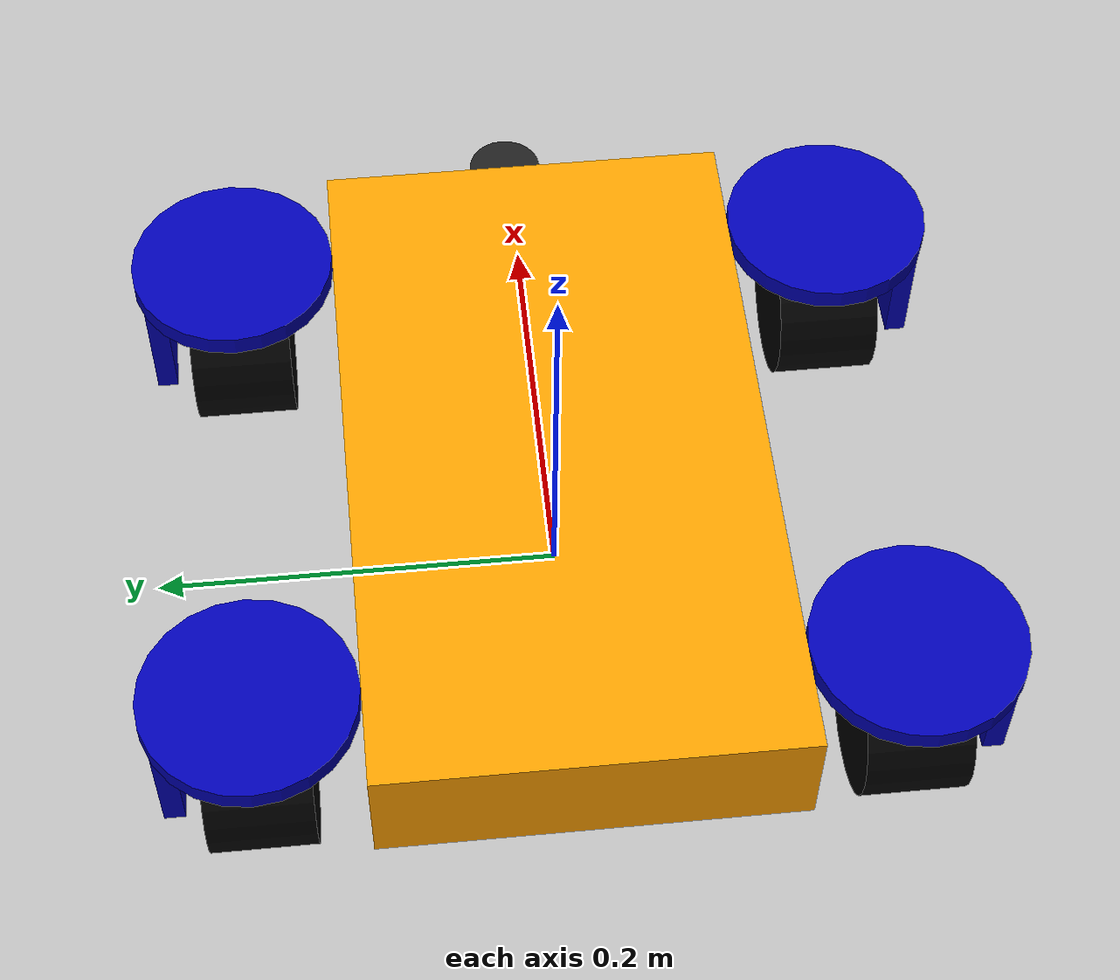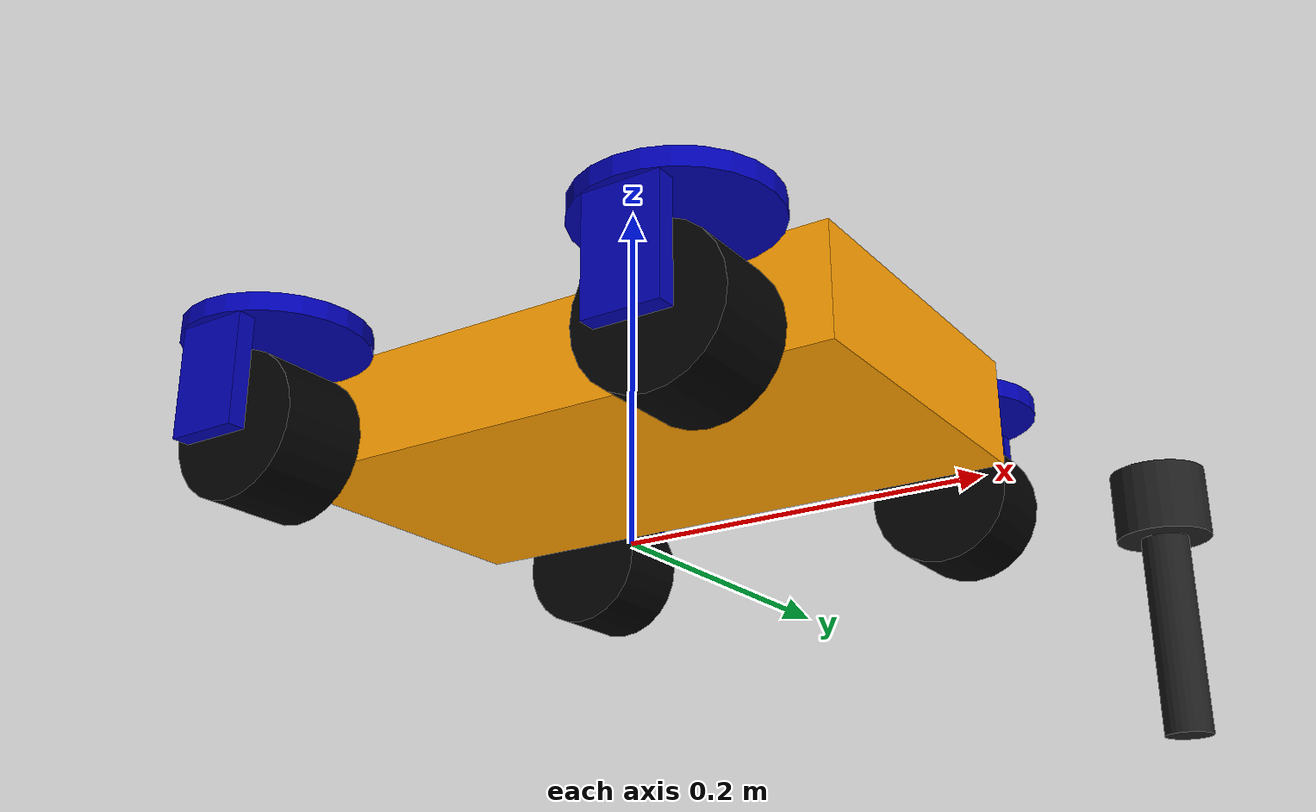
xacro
<?xml version="1.0" ?>
<robot name="zinger" xmlns:xacro="http://www.ros.org/wiki/xacro">

    <!-- CONSTANTS -->
    <!-- Math -->
    <xacro:property name="PI" value="3.1415926535897931"/>

    <!-- ARGUMENTS -->
    <xacro:arg name="is_simulation" default="true" />
    <xacro:arg name="use_fake_hardware" default="true" />
    <xacro:arg name="fake_sensor_commands" default="false" />
    <xacro:arg name="chassis_version" default="v1" />

    <!-- Chassis dimensions -->
    <xacro:property name="chassis_mass" value="1.0" /> <!-- arbitrary value for base mass -->
    <xacro:property name="chassis_length" value="0.35" />
    <xacro:property name="chassis_width" value="0.2" />
    <xacro:property name="chassis_height" value="0.06" />

    <!-- Suspension dimensions -->
    <xacro:property name="wheel_offset" value="0.01" />
    <xacro:property name="steering_mass" value="0.2" />
    <xacro:property name="steering_radius" value="0.05" />
    <xacro:property name="steering_thickness" value="0.01" />

    <!-- Wheel dimensions -->
    <xacro:property name="wheel_mass" value="0.2" />
    <xacro:property name="wheel_radius" value="0.04" />
    <xacro:property name="wheel_width" value="0.05" />

    <xacro:property name="front_x_reflect" value="1" />
    <xacro:property name="rear_x_reflect" value="-1" />

    <xacro:property name="left_y_reflect" value="1" />
    <xacro:property name="right_y_reflect" value="-1" />

    <!-- INCLUDES -->

    <xacro:include filename="$(find agv_pkg)/urdf/materials.xacro" />
    <xacro:include filename="$(find agv_pkg)/urdf/macros.xacro" />

    <xacro:if value="$(arg is_simulation)">
    <xacro:include filename="$(find agv_pkg)/urdf/gazebo.xacro" />
    </xacro:if>

    <!-- MODEL -->

    <!--
      An empty base footprint that describes the origin of the robot on the ground
    -->
    <link name="base_footprint">
    </link>

    <!--
      An empty base link that describes the origin of the robot at the c.o.g of the chassis
    -->
    <joint name="joint_base_to_footprint" type="fixed">
        <origin rpy="0 0 0" xyz="0 0 ${wheel_radius + 0.5 * chassis_height}"/>
        <parent link="base_footprint"/>
        <child link="base_link"/>
    </joint>
    <link name="base_link">
    </link>

    <!--
        A box that pretends to be the ground. Used for testing that the scuttle model has been assembled correctly.
    -->

    <!-- The chassis of zinger -->
    <joint name="chassis_joint" type="fixed">
        <origin rpy="0 0 0" xyz="0.0 0 0.0"/>
        <parent link="base_link"/>
        <child link="chassis_link"/>
    </joint>

    <link name="chassis_link">
        <inertial>
            <origin rpy="0 0 0" xyz="0 0 0.0"/>
            <mass value="${chassis_mass}"/>
            <inertia
                ixx="${chassis_mass / 12.0 * (chassis_width * chassis_width + chassis_height * chassis_height)}"
                ixy="0"
                ixz="0"
                iyy="${chassis_mass / 12.0 * (chassis_length * chassis_length + chassis_height * chassis_height)}"
                iyz="0"
                izz="${chassis_mass / 12.0 * (chassis_length * chassis_length + chassis_width * chassis_width)}"/>
        </inertial>
        <visual>
            <origin rpy="0 0 0" xyz="0 0 0.0"/>
            <geometry>
                <box size="${chassis_length} ${chassis_width} ${chassis_height}" />
            </geometry>
            <material name="orange"/>
        </visual>
        <collision>
            <origin rpy="0 0 0" xyz="0 0 0.0"/>
            <geometry>
                <box size="${chassis_length} ${chassis_width} ${chassis_height}" />
            </geometry>
        </collision>
    </link>

    <!--
        Left front wheel assembly
    -->
    <xacro:drive_module_assembly
        name="left_front"
        chassis_length="${chassis_length}"
        chassis_width="${chassis_width}"
        chassis_height="${chassis_height}"
        wheel_mass="${wheel_mass}"
        wheel_radius="${wheel_radius}"
        wheel_width="${wheel_width}"
        steering_mass="${steering_mass}"
        steering_radius="${steering_radius}"
        steering_thickness="${steering_thickness}"
        offset="${wheel_offset}"
        x_reflect="${front_x_reflect}"
        y_reflect="${left_y_reflect}" />

    <!--
        Left rear wheel assembly
    -->
    <xacro:drive_module_assembly
        name="left_rear"
        chassis_length="${chassis_length}"
        chassis_width="${chassis_width}"
        chassis_height="${chassis_height}"
        wheel_mass="${wheel_mass}"
        wheel_radius="${wheel_radius}"
        wheel_width="${wheel_width}"
        steering_mass="${steering_mass}"
        steering_radius="${steering_radius}"
        steering_thickness="${steering_thickness}"
        offset="${wheel_offset}"
        x_reflect="${rear_x_reflect}"
        y_reflect="${left_y_reflect}" />

    <!--
        Right rear wheel assembly
    -->
    <xacro:drive_module_assembly
        name="right_rear"
        chassis_length="${chassis_length}"
        chassis_width="${chassis_width}"
        chassis_height="${chassis_height}"
        wheel_mass="${wheel_mass}"
        wheel_radius="${wheel_radius}"
        wheel_width="${wheel_width}"
        steering_mass="${steering_mass}"
        steering_radius="${steering_radius}"
        steering_thickness="${steering_thickness}"
        offset="${wheel_offset}"
        x_reflect="${rear_x_reflect}"
        y_reflect="${right_y_reflect}" />

    <!--
        Right front wheel assembly
    -->
    <xacro:drive_module_assembly
        name="right_front"
        chassis_length="${chassis_length}"
        chassis_width="${chassis_width}"
        chassis_height="${chassis_height}"
        wheel_mass="${wheel_mass}"
        wheel_radius="${wheel_radius}"
        wheel_width="${wheel_width}"
        steering_mass="${steering_mass}"
        steering_radius="${steering_radius}"
        steering_thickness="${steering_thickness}"
        offset="${wheel_offset}"
        x_reflect="${front_x_reflect}"
        y_reflect="${right_y_reflect}" />

    <ros2_control name="ZingerJointControl" type="system">
        <xacro:if value="$(arg is_simulation)">
            <hardware>
                <plugin>gz_ros2_control/GazeboSimSystem</plugin>
            </hardware>
        </xacro:if>
        <xacro:unless value="$(arg is_simulation)">
            <xacro:if value="$(arg use_fake_hardware)">
                <hardware>
                    <plugin>mock_components/GenericSystem</plugin>
                </hardware>
            </xacro:if>
            <xacro:unless value="$(arg use_fake_hardware)">
                <!-- USE REAL HARDWARE HERE -->
                <hardware>
                </hardware>
            </xacro:unless>
        </xacro:unless>
        <xacro:steering_module_controller name="left_front" />
        <xacro:steering_module_controller name="left_rear" />
        <xacro:steering_module_controller name="right_rear" />
        <xacro:steering_module_controller name="right_front" />
    </ros2_control>

    <!-- Sensors -->

    <!-- IMU -->
    <xacro:sensor_imu name="imu_center" parent_link="chassis_link">
        <origin rpy="0 0 0" xyz="0.0 0.0 0.0"/>
    </xacro:sensor_imu>

    <xacro:include filename="lidar.xacro" />
    <!-- Bump -->

    <!-- Sonar -->

    <!-- IR -->

    <!-- Cliff sensors -->
</robot>

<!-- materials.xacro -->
<robot name="zinger" xmlns:xacro="http://www.ros.org/wiki/xacro" >
    <material name="black">
        <color rgba="0.01 0.01 0.01 1.000"/>
    </material>
    <material name="silver">
        <color rgba="0.700 0.700 0.700 1.000"/>
    </material>
    <material name="gray">
        <color rgba="0.250 0.250 0.250 1.000"/>
    </material>
    <material name="blue">
        <color rgba="0.000 0.000 0.700 1.000"/>
    </material>

    <material name="orange">
        <color rgba="1.000 0.624 0.000 1.000"/>
    </material>
</robot>

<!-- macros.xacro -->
<robot name="zinger" xmlns:xacro="http://www.ros.org/wiki/xacro" >

    <xacro:macro name="wheel_assembly" params="name mass radius width offset">
        <joint name="joint_steering_to_wheel_${name}" type="continuous">
            <origin rpy="0 0 0" xyz="0 0 ${-1 * (radius + offset)}"/>
            <parent link="link_steering_${name}"/>
            <child link="link_wheel_${name}"/>
            <axis xyz="0.0 1.0 0.0"/>
        </joint>

        <link name="link_wheel_${name}">
            <inertial>
                <origin xyz="0 0 0" rpy="${PI/2} 0 0" />
                <mass value="${mass}"/>
                <inertia
                    ixx="${(mass/12) * (3*radius*radius + width*width)}"
                    ixy="0"
                    ixz="0"
                    iyy="${(mass/12) * (3*radius*radius + width*width)}"
                    iyz="0"
                    izz="${(mass/2) * (radius*radius)}"/>
            </inertial>
            <visual>
                <origin rpy="${PI/2} 0 0" xyz="0 0 0"/>
                <geometry>
                    <cylinder length="${width}" radius="${radius}" />
                </geometry>
                <material name="black"/>
            </visual>
            <collision>
                <origin rpy="${PI/2} 0 0" xyz="0 0 0"/>
                <geometry>
                    <cylinder length="${width}" radius="${radius}" />
                </geometry>
            </collision>
        </link>
    </xacro:macro>

    <xacro:macro name="steering_assembly" params="name mass chassis_length chassis_width chassis_height steering_radius thickness wheel_radius offset x_reflect y_reflect">
        <joint name="joint_chassis_to_steering_${name}" type="continuous">
            <origin rpy="0 0 0" xyz="${x_reflect * (0.5 * chassis_length - steering_radius)} ${y_reflect * (0.5 * chassis_width + steering_radius)} ${0.5 * chassis_height - 0.5 * thickness}"/>
            <parent link="chassis_link"/>
            <child link="link_steering_${name}"/>
            <axis xyz="0.0 0.0 1.0"/>
        </joint>

        <link name="link_steering_${name}">
            <inertial>
                <origin xyz="0 0 0" rpy="0 0 0" />
                <mass value="${mass}"/>
                <inertia
                    ixx="${(mass/12) * (3*steering_radius*steering_radius + thickness*thickness)}"
                    ixy="0"
                    ixz="0"
                    iyy="${(mass/12) * (3*steering_radius*steering_radius + thickness*thickness)}"
                    iyz="0"
                    izz="${(mass/2) * (steering_radius*steering_radius)}"/>
            </inertial>

            <visual>
                <origin rpy="0 0 0" xyz="0 0 0"/>
                <geometry>
                    <cylinder length="${thickness}" radius="${steering_radius}" />
                </geometry>
                <material name="blue"/>
            </visual>
            <collision>
                <origin rpy="0 0 0" xyz="0 0 0"/>
                <geometry>
                    <cylinder length="${thickness}" radius="${steering_radius}" />
                </geometry>
            </collision>

            <visual>
                <origin rpy="0 0 0" xyz="0 ${y_reflect * wheel_radius} ${-1 * 0.5 * (thickness + wheel_radius + 2 * offset)}"/>
                <geometry>
                    <box size="${wheel_radius} 0.01 ${wheel_radius + 2 * offset}" />
                </geometry>
                <material name="blue"/>
            </visual>
            <collision>
                <origin rpy="0 0 0" xyz="0 ${y_reflect * wheel_radius} ${-1 * 0.5 * (thickness + wheel_radius + 2 * offset)}"/>
                <geometry>
                    <box size="${wheel_radius} 0.01 ${wheel_radius + 2 * offset}" />
                </geometry>
            </collision>
        </link>
    </xacro:macro>

    <xacro:macro name="drive_module_assembly" params="name chassis_length chassis_width chassis_height wheel_mass wheel_radius wheel_width steering_mass steering_radius steering_thickness offset x_reflect y_reflect">
        <xacro:steering_assembly
            name="${name}"
            mass="${steering_mass}"
            chassis_length="${chassis_length}"
            chassis_width="${chassis_width}"
            chassis_height="${chassis_height}"
            steering_radius="${steering_radius}"
            thickness="${steering_thickness}"
            wheel_radius="${wheel_radius}"
            offset="${offset}"
            x_reflect="${x_reflect}"
            y_reflect="${y_reflect}"/>
        <xacro:wheel_assembly
            name="${name}"
            mass="${wheel_mass}"
            radius="${wheel_radius}"
            width="${wheel_width}"
            offset="${offset + 0.5 * steering_thickness}"/>
    </xacro:macro>

    <!-- CONTROLLERS -->
    <xacro:macro name="steering_module_controller" params="name">
        <joint name="joint_chassis_to_steering_${name}">
            <command_interface name="position">
                <param name="min">-${2 * PI}</param>
                <param name="max">${2 * PI}</param>
            </command_interface>
            <state_interface name="position"/>
            <state_interface name="velocity"/>
            <state_interface name="acceleration"/>
        </joint>
        <joint name="joint_steering_to_wheel_${name}">
            <command_interface name="velocity">
                <param name="min">-1</param>
                <param name="max">1</param>
            </command_interface>
            <state_interface name="position"/>
            <state_interface name="velocity"/>
            <state_interface name="acceleration"/>
        </joint>
    </xacro:macro>

    <!-- SENSORS -->
    <!-- IMU sensor -->
    <xacro:macro name="sensor_imu" params="name parent_link *origin">
        <xacro:property name="mass"     value="0.01"/>
        <xacro:property name="length_x" value="0.01" />
        <xacro:property name="length_y" value="0.01" />
        <xacro:property name="length_z" value="0.01" />

        <xacro:property name="collision_x_offset" value="0.005" />
        <xacro:property name="collision_y_offset" value="0.005" />
        <xacro:property name="collision_z_offset" value="${0.5 * length_z}" />

        <joint name="joint_body_to_sensor_imu_${name}" type="fixed">
            <xacro:insert_block name="origin"/>
            <parent link="${parent_link}"/>
            <child link="link_sensor_imu_${name}"/>
        </joint>

        <link name="link_sensor_imu_${name}">
            <visual>
                <origin xyz="${collision_x_offset} ${collision_y_offset} ${collision_z_offset}"/>
                <geometry>
                    <box size="${length_x} ${length_y} ${length_z}"/>
                </geometry>
            </visual>
            <collision>
                <origin xyz="${collision_x_offset} ${collision_y_offset} ${collision_z_offset}"/>
                <geometry>
                    <box size="${length_x} ${length_y} ${length_z}"/>
                </geometry>
            </collision>
            <inertial>
                <mass value="${mass}" />
                <xacro:insert_block name="origin"/>
                <inertia
                    ixx="${(1/12) * mass * (length_y*length_y + length_z*length_z)}"
                    ixy="0.0"
                    ixz="0.0"
                    iyy="${(1/12) * mass * (length_x*length_x + length_z*length_z)}"
                    iyz="0.0"
                    izz="${(1/12) * mass * (length_x*length_x + length_y*length_y)}" />
            </inertial>
        </link>
    </xacro:macro>

    <!-- Lidar sensor -->
    <xacro:macro name="sensor_lidar" params="name parent_link chassis_top_relative_height">

        <xacro:property name="mass"     value="0.17"/>
        <xacro:property name="length_x" value="0.071" />
        <xacro:property name="length_y" value="0.10" />
        <xacro:property name="length_z" value="0.06" />

        <xacro:property name="collision_x_offset" value="0" />
        <xacro:property name="collision_y_offset" value="0" />
        <xacro:property name="collision_z_offset" value="${chassis_top_relative_height}" />

        <joint name="joint_body_to_sensor_lidar_${name}" type="fixed">
            <parent link="${parent_link}"/>
            <child link="link_sensor_lidar_${name}"/>
            <origin rpy="0 0 0" xyz="${collision_x_offset} ${collision_y_offset} ${collision_z_offset}"/>
        </joint>

        <link name="link_sensor_lidar_${name}">
            <visual>
                <origin rpy="0 0 0" xyz="0.0 0 ${0.5 * length_z}"/>
                <geometry>
                    <box size="${length_x} ${length_y} ${length_z}"/>
                </geometry>
            </visual>
            <collision>
                <origin rpy="0 0 0" xyz="0.0 0 ${0.5 * length_z}"/>
                <geometry>
                    <box size="${length_x} ${length_y} ${length_z}"/>
                </geometry>
            </collision>
            <inertial>
                <mass value="${mass}" />
                <origin rpy="0 0 0" xyz="0.0 0 ${0.5 * length_z}"/>
                <inertia
                    ixx="${(1/12) * mass * (length_y*length_y + length_z*length_z)}"
                    ixy="0.0"
                    ixz="0.0"
                    iyy="${(1/12) * mass * (length_x*length_x + length_z*length_z)}"
                    iyz="0.0"
                    izz="${(1/12) * mass * (length_x*length_x + length_y*length_y)}" />
            </inertial>
        </link>
    </xacro:macro>

    <!-- Bump sensor -->

    <!-- Sonar sensor -->

    <!-- IR sensor -->

</robot>

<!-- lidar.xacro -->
<robot xmlns:xacro="http://www.ros.org/wiki/xacro" >

    <xacro:macro name="inertial_cylinder" params="mass length radius *origin">
        <inertial>
            <xacro:insert_block name="origin"/>
            <mass value="${mass}" />
            <inertia ixx="${(1/12) * mass * (3*radius*radius + length*length)}" ixy="0.0" ixz="0.0"
                    iyy="${(1/12) * mass * (3*radius*radius + length*length)}" iyz="0.0"
                    izz="${(1/2) * mass * (radius*radius)}" />
        </inertial>
    </xacro:macro>

    <joint name="laser_joint" type="fixed">
        <parent link="chassis_link"/>
        <child link="laser_frame"/>
        <origin xyz="0.28 0 -0.1" rpy="0 0 0"/>
    </joint>

    <link name="laser_frame">
        <visual>
            <geometry>
                <cylinder radius="0.02" length="0.03"/>
            </geometry>
        </visual>
        <visual>
            <origin xyz="0 0 -0.05"/>
            <geometry>
                <cylinder radius="0.01" length="0.1"/>
            </geometry>
        </visual>
        <collision>
            <geometry>
                <cylinder radius="0.05" length="0.04"/>
            </geometry>
        </collision>
        <xacro:inertial_cylinder mass="0.1" length="0.04" radius="0.03">
            <origin xyz="0 0 0" rpy="0 0 0"/>
        </xacro:inertial_cylinder>
    </link>

    <gazebo reference="laser_frame">
        <material>Gazebo/Black</material>

        <sensor name="laser" type="gpu_lidar">
            <pose> 0 0 0 0 0 0 </pose>
            <visualize>false</visualize>
            <update_rate>10</update_rate>
            <lidar>
                <scan>
                    <horizontal>
                        <samples>360</samples>
                        <min_angle>-3.14</min_angle>
                        <max_angle>3.14</max_angle>
                    </horizontal>
                </scan>
                <range>
                    <min>0.3</min>
                    <max>12</max>
                </range>
            </lidar>
            <topic>scan</topic>
            <gz_frame_id>laser_frame</gz_frame_id>
        </sensor>
    </gazebo>

</robot>
